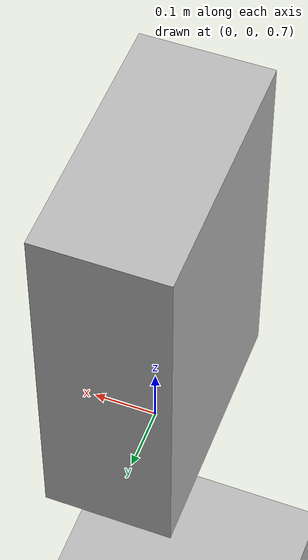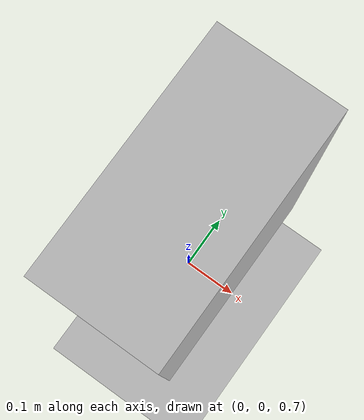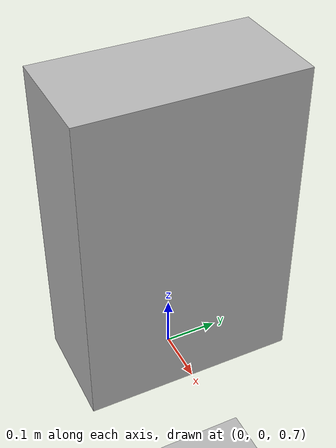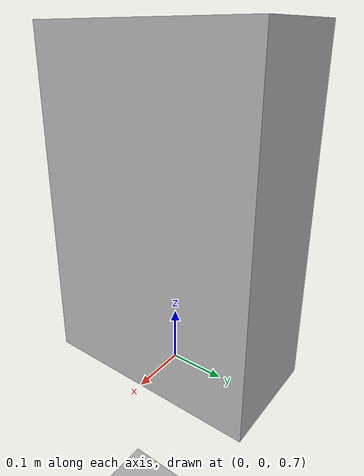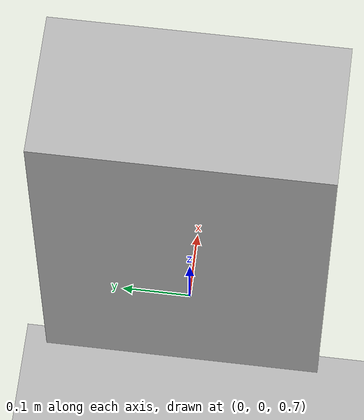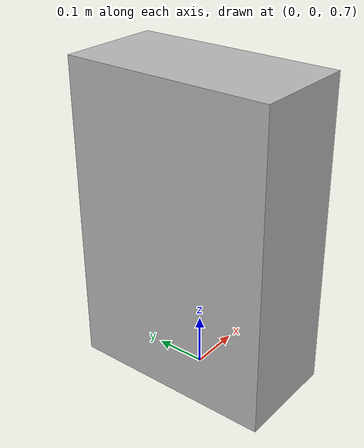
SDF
<?xml version="1.0" ?>
<sdf version="1.4">
  <world name="default">
    <scene>
      <ambient>1.0 1.0 1.0 1</ambient>
      <background>0 0 0 1.0</background>
      <shadows>true</shadows>
    </scene>
    <physics type="rtql8">
      <gravity>0 0 -10.0</gravity>
      <ode>
        <solver>
          <type>quick</type>
          <dt>0.001</dt>
          <iters>10</iters>
          <sor>1.3</sor>
        </solver>
        <constraints>
          <cfm>0.0</cfm>
          <erp>0.2</erp>
          <contact_max_correcting_vel>100.0</contact_max_correcting_vel>
          <contact_surface_layer>0.0</contact_surface_layer>
        </constraints>
      </ode>
    </physics>
    <model name="model_cube">
      <pose>0 0 1 0 0 0</pose>
      <link name="cube">
	<pose>0 0 0 0 0 0</pose>
        <inertial>
          <inertia>
            <ixx>1</ixx>
            <ixy>0</ixy>
            <ixz>0</ixz>
            <iyy>1</iyy>
            <iyz>0</iyz>
            <izz>1</izz>
          </inertia>
          <mass>1.0</mass>
        </inertial>
        <visual name="visual">
          <pose>0 0 0 0 0 0</pose>
          <geometry>
            <box>
              <size>0.2 0.4 0.6</size>
            </box>
          </geometry>
          <material>
            <script>Gazebo/WoodPallet</script>
          </material>
        </visual>
      </link>
    </model>

    <model name="model_ground">
      <pose>0 0 0 0 0 0</pose>
      <link name="ground">
	<pose>0 0 0 0 0 0</pose>
        <inertial>
          <inertia>
            <ixx>1</ixx>
            <ixy>0</ixy>
            <ixz>0</ixz>
            <iyy>1</iyy>
            <iyz>0</iyz>
            <izz>1</izz>
          </inertia>
          <mass>10.0</mass>
        </inertial>
        <visual name="visual">
          <pose>0 0 0 0 0 0</pose>
          <geometry>
            <box>
              <size>4 4 0.1</size>
            </box>
          </geometry>
          <material>
            <script>Gazebo/WoodPallet</script>
          </material>
        </visual>
      </link>
    </model>

    <light type="directional" name="sun">
      <pose>0 0 10 0 0 0</pose>
      <diffuse>.8 .8 .8 1</diffuse>
      <specular>.1 .1 .1 1</specular>
      <attenuation>
        <range>10</range>
        <linear>0.01</linear>
        <constant>0.8</constant>
        <quadratic>0.0</quadratic>
      </attenuation>
      <direction>0 .5 -.5</direction>
      <cast_shadows>true</cast_shadows>
    </light>
  </world>
</sdf>
